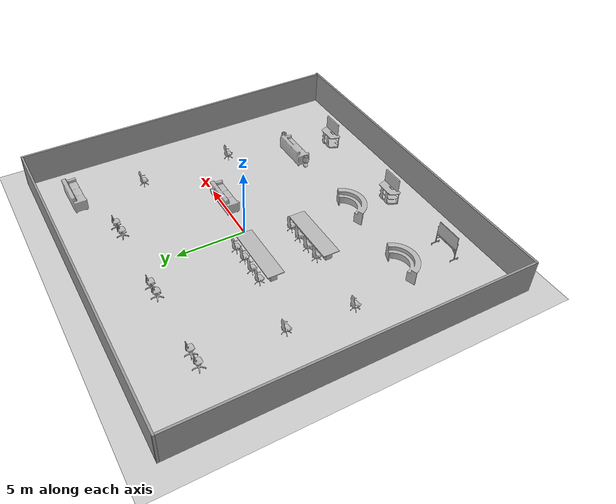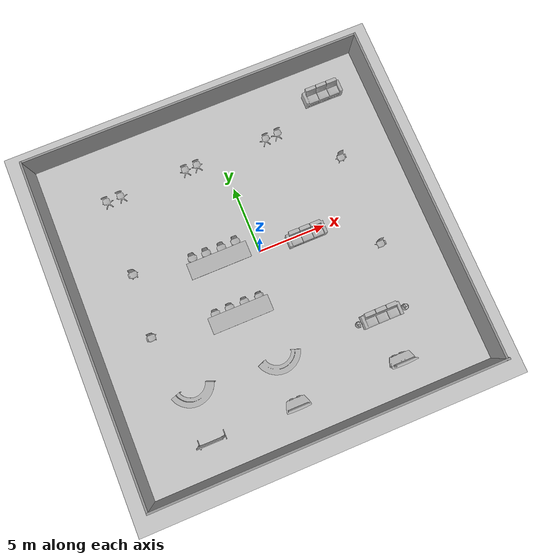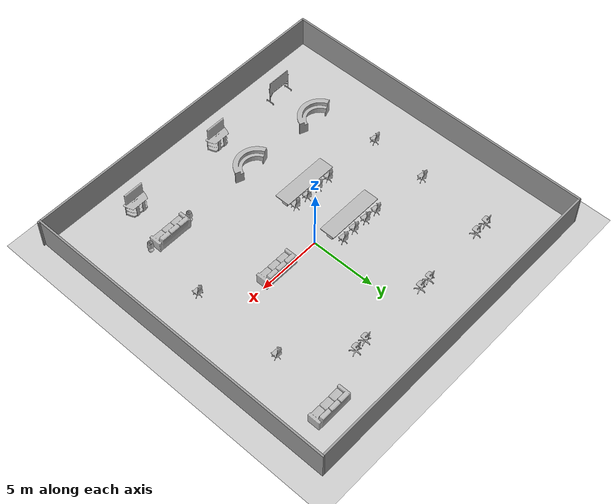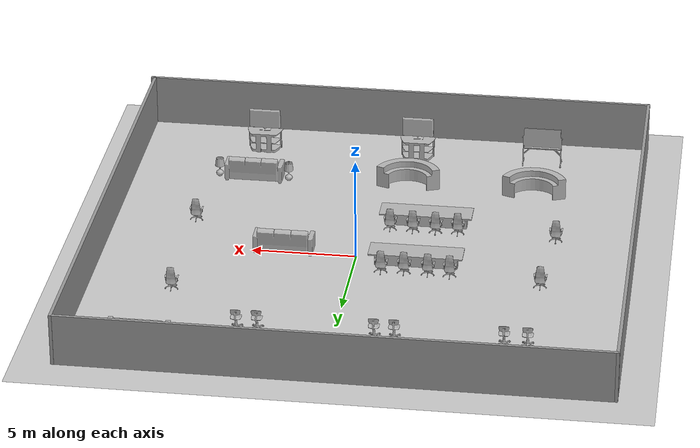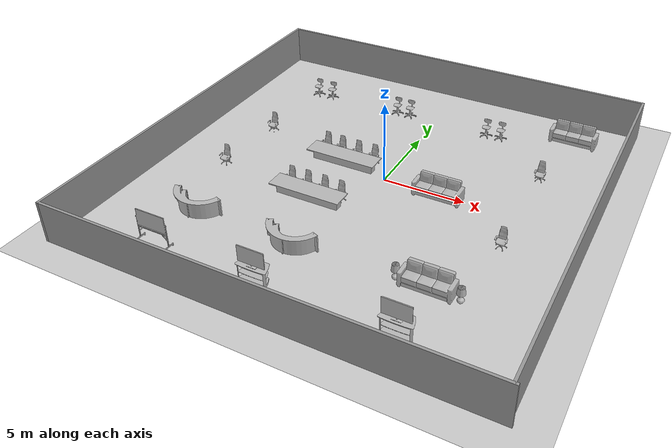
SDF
<sdf version="1.7">
 <world name="default">
  <light name="sun" type="directional">
   <pose>0 0 10 0 -0 0</pose>
   <diffuse>0.8 0.8 0.8 1</diffuse>
   <specular>0.2 0.2 0.2 1</specular>
   <attenuation>
    <range>1000</range>
    <constant>0.9</constant>
    <linear>0.01</linear>
    <quadratic>0.001</quadratic>
   </attenuation>
   <direction>-0.5 0.1 -0.9</direction>
   <spot><inner_angle>0</inner_angle><outer_angle>0</outer_angle><falloff>0</falloff></spot>
  </light>
  <model name="ground_plane">
   <static>1</static>
   <link name="link">
    <collision name="collision">
     <geometry><plane><normal>0 0 1</normal><size>100 100</size></plane></geometry>
     <surface>
      <contact><collide_bitmask>65535</collide_bitmask></contact>
      <friction><ode><mu>100</mu><mu2>50</mu2></ode></friction>
     </surface>
    </collision>
    <visual name="visual">
     <cast_shadows>0</cast_shadows>
     <geometry><plane><normal>0 0 1</normal><size>100 100</size></plane></geometry>
     <material>
      <script><uri>file://media/materials/scripts/gazebo.material</uri><name>Gazebo/Grey</name></script>
     </material>
    </visual>
   </link>
  </model>
  <gravity>0 0 -9.8</gravity>
  <magnetic_field>6e-06 2.3e-05 -4.2e-05</magnetic_field>
  <atmosphere type="adiabatic"/>
  <physics type="ode">
   <max_step_size>0.001</max_step_size>
   <real_time_factor>1</real_time_factor>
   <real_time_update_rate>1000</real_time_update_rate>
  </physics>
  <scene><ambient>0.4 0.4 0.4 1</ambient><background>0.7 0.7 0.7 1</background><shadows>1</shadows></scene>
  <spherical_coordinates>
   <surface_model>EARTH_WGS84</surface_model>
   <latitude_deg>0</latitude_deg>
   <longitude_deg>0</longitude_deg>
   <elevation>0</elevation>
   <heading_deg>0</heading_deg>
  </spherical_coordinates>
  <model name="office">
   <pose>-0.4259 -0.754501 0 0 -0 0</pose>
   <link name="Wall_0">
    <collision name="Wall_0_Collision">
     <geometry><box><size>25 0.15 2.5</size></box></geometry>
     <pose>0 0 1.25 0 -0 0</pose>
    </collision>
    <visual name="Wall_0_Visual">
     <pose>0 0 1.25 0 -0 0</pose>
     <geometry><box><size>25 0.15 2.5</size></box></geometry>
     <material>
      <script><uri>file://media/materials/scripts/gazebo.material</uri><name>Gazebo/Grey</name></script>
      <ambient>1 1 1 1</ambient>
     </material>
     <meta><layer>0</layer></meta>
    </visual>
    <pose>-12.675 -0.001862 0 0 -0 -1.57079</pose>
   </link>
   <link name="Wall_2">
    <collision name="Wall_2_Collision">
     <geometry><box><size>25.5 0.15 2.5</size></box></geometry>
     <pose>0 0 1.25 0 -0 0</pose>
    </collision>
    <visual name="Wall_2_Visual">
     <pose>0 0 1.25 0 -0 0</pose>
     <geometry><box><size>25.5 0.15 2.5</size></box></geometry>
     <material>
      <script><uri>file://media/materials/scripts/gazebo.material</uri><name>Gazebo/Grey</name></script>
      <ambient>1 1 1 1</ambient>
     </material>
     <meta><layer>0</layer></meta>
    </visual>
    <pose>0.000117 -12.4267 0 0 -0 0</pose>
   </link>
   <link name="Wall_4">
    <collision name="Wall_4_Collision">
     <geometry><box><size>25.25 0.15 2.5</size></box></geometry>
     <pose>0 0 1.25 0 -0 0</pose>
    </collision>
    <visual name="Wall_4_Visual">
     <pose>0 0 1.25 0 -0 0</pose>
     <geometry><box><size>25.25 0.15 2.5</size></box></geometry>
     <material>
      <script><uri>file://media/materials/scripts/gazebo.material</uri><name>Gazebo/Grey</name></script>
      <ambient>1 1 1 1</ambient>
     </material>
     <meta><layer>0</layer></meta>
    </visual>
    <pose>-0.125116 12.423 0 0 -0 0</pose>
   </link>
   <link name="Wall_6">
    <collision name="Wall_6_Collision">
     <geometry><box><size>25 0.15 2.5</size></box></geometry>
     <pose>0 0 1.25 0 -0 0</pose>
    </collision>
    <visual name="Wall_6_Visual">
     <pose>0 0 1.25 0 -0 0</pose>
     <geometry><box><size>25 0.15 2.5</size></box></geometry>
     <material>
      <script><uri>file://media/materials/scripts/gazebo.material</uri><name>Gazebo/Grey</name></script>
      <ambient>1 1 1 1</ambient>
     </material>
     <meta><layer>0</layer></meta>
    </visual>
    <pose>12.5541 0.00186 0 0 -0 -1.5708</pose>
   </link>
   <link name="Wall_7">
    <collision name="Wall_7_Collision">
     <geometry><box><size>0.15 0.15 2.5</size></box></geometry>
     <pose>0 0 1.25 0 -0 0</pose>
    </collision>
    <visual name="Wall_7_Visual">
     <pose>0 0 1.25 0 -0 0</pose>
     <geometry><box><size>0.15 0.15 2.5</size></box></geometry>
     <material>
      <script><uri>file://media/materials/scripts/gazebo.material</uri><name>Gazebo/Grey</name></script>
      <ambient>1 1 1 1</ambient>
     </material>
     <meta><layer>0</layer></meta>
    </visual>
    <pose>12.5541 -12.4231 0 0 -0 0</pose>
   </link>
   <static>1</static>
  </model>
  <model name="conference_table_large">
   <static>1</static>
   <link name="link">
    <collision name="collision">
     <pose>-0.000328 -0.000776 0.367474 0 -0 0</pose>
     <geometry><box><size>4.52032 1.21763 0.742359</size></box></geometry>
    </collision>
    <visual name="visual">
     <geometry>
      <mesh>
       <uri>model://conference_table_large/meshes/conference_table_large.obj</uri>
       <scale>0.01 0.01 0.01</scale>
      </mesh>
     </geometry>
    </visual>
   </link>
   <pose>-2.94339 0.417475 0 0 -0 0</pose>
  </model>
  <model name="desk_chair">
   <static>1</static>
   <link name="link">
    <collision name="collision">
     <pose>0.001581 0.000308 0.612847 0 -0 0</pose>
     <geometry><cylinder><radius>0.33</radius><length>1.23</length></cylinder></geometry>
    </collision>
    <visual name="visual">
     <geometry>
      <mesh><uri>model://desk_chair/meshes/desk_chair.obj</uri><scale>0.01 0.01 0.01</scale></mesh>
     </geometry>
    </visual>
   </link>
   <pose>-4.64277 1.33567 0 0 -0 0</pose>
  </model>
  <model name="desk_chair_0">
   <static>1</static>
   <link name="link">
    <collision name="collision">
     <pose>0.001581 0.000308 0.612847 0 -0 0</pose>
     <geometry><cylinder><radius>0.33</radius><length>1.23</length></cylinder></geometry>
    </collision>
    <visual name="visual">
     <geometry>
      <mesh><uri>model://desk_chair/meshes/desk_chair.obj</uri><scale>0.01 0.01 0.01</scale></mesh>
     </geometry>
    </visual>
   </link>
   <pose>-3.60424 1.3042 0 0 -0 0</pose>
  </model>
  <model name="desk_chair_1">
   <static>1</static>
   <link name="link">
    <collision name="collision">
     <pose>0.001581 0.000308 0.612847 0 -0 0</pose>
     <geometry><cylinder><radius>0.33</radius><length>1.23</length></cylinder></geometry>
    </collision>
    <visual name="visual">
     <geometry>
      <mesh><uri>model://desk_chair/meshes/desk_chair.obj</uri><scale>0.01 0.01 0.01</scale></mesh>
     </geometry>
    </visual>
   </link>
   <pose>-2.46683 1.27192 0 0 -0 0</pose>
  </model>
  <model name="desk_chair_2">
   <static>1</static>
   <link name="link">
    <collision name="collision">
     <pose>0.001581 0.000308 0.612847 0 -0 0</pose>
     <geometry><cylinder><radius>0.33</radius><length>1.23</length></cylinder></geometry>
    </collision>
    <visual name="visual">
     <geometry>
      <mesh><uri>model://desk_chair/meshes/desk_chair.obj</uri><scale>0.01 0.01 0.01</scale></mesh>
     </geometry>
    </visual>
   </link>
   <pose>-1.37834 1.31417 0 0 -0 0</pose>
  </model>
  <model name="reception_desk">
   <static>1</static>
   <link name="link">
    <collision name="collision">
     <geometry>
      <mesh><uri>model://reception_desk/meshes/reception_desk.obj</uri><scale>0.01 0.01 0.01</scale></mesh>
     </geometry>
    </collision>
    <visual name="visual">
     <geometry>
      <mesh><uri>model://reception_desk/meshes/reception_desk.obj</uri><scale>0.01 0.01 0.01</scale></mesh>
     </geometry>
    </visual>
   </link>
   <pose>-7.8708 -6.69199 0 0 -0 0</pose>
  </model>
  <model name="office_chair">
   <static>1</static>
   <link name="link">
    <collision name="collision">
     <pose>0.001581 0.000308 0.569888 0 -0 0</pose>
     <geometry><cylinder><radius>0.43</radius><length>1.14</length></cylinder></geometry>
    </collision>
    <visual name="visual">
     <geometry>
      <mesh><uri>model://office_chair/meshes/office_chair.dae</uri><scale>1.4 1.4 1.4</scale></mesh>
     </geometry>
    </visual>
   </link>
   <pose>-8.83628 7.43791 0 0 -0 0</pose>
  </model>
  <model name="office_chair_0">
   <static>1</static>
   <link name="link">
    <collision name="collision">
     <pose>0.001581 0.000308 0.569888 0 -0 0</pose>
     <geometry><cylinder><radius>0.43</radius><length>1.14</length></cylinder></geometry>
    </collision>
    <visual name="visual">
     <geometry>
      <mesh><uri>model://office_chair/meshes/office_chair.dae</uri><scale>1.4 1.4 1.4</scale></mesh>
     </geometry>
    </visual>
   </link>
   <pose>-7.76556 7.45732 0 0 -0 0</pose>
  </model>
  <model name="office_chair_1">
   <static>1</static>
   <link name="link">
    <collision name="collision">
     <pose>0.001581 0.000308 0.569888 0 -0 0</pose>
     <geometry><cylinder><radius>0.43</radius><length>1.14</length></cylinder></geometry>
    </collision>
    <visual name="visual">
     <geometry>
      <mesh><uri>model://office_chair/meshes/office_chair.dae</uri><scale>1.4 1.4 1.4</scale></mesh>
     </geometry>
    </visual>
   </link>
   <pose>-2.767 7.50876 0 0 -0 0</pose>
  </model>
  <model name="office_chair_2">
   <static>1</static>
   <link name="link">
    <collision name="collision">
     <pose>0.001581 0.000308 0.569888 0 -0 0</pose>
     <geometry><cylinder><radius>0.43</radius><length>1.14</length></cylinder></geometry>
    </collision>
    <visual name="visual">
     <geometry>
      <mesh><uri>model://office_chair/meshes/office_chair.dae</uri><scale>1.4 1.4 1.4</scale></mesh>
     </geometry>
    </visual>
   </link>
   <pose>-1.84855 7.5353 0 0 -0 0</pose>
  </model>
  <model name="office_chair_3">
   <static>1</static>
   <link name="link">
    <collision name="collision">
     <pose>0.001581 0.000308 0.569888 0 -0 0</pose>
     <geometry><cylinder><radius>0.43</radius><length>1.14</length></cylinder></geometry>
    </collision>
    <visual name="visual">
     <geometry>
      <mesh><uri>model://office_chair/meshes/office_chair.dae</uri><scale>1.4 1.4 1.4</scale></mesh>
     </geometry>
    </visual>
   </link>
   <pose>3.53253 7.4839 0 0 -0 0</pose>
  </model>
  <model name="office_chair_4">
   <static>1</static>
   <link name="link">
    <collision name="collision">
     <pose>0.001581 0.000308 0.569888 0 -0 0</pose>
     <geometry><cylinder><radius>0.43</radius><length>1.14</length></cylinder></geometry>
    </collision>
    <visual name="visual">
     <geometry>
      <mesh><uri>model://office_chair/meshes/office_chair.dae</uri><scale>1.4 1.4 1.4</scale></mesh>
     </geometry>
    </visual>
   </link>
   <pose>4.48399 7.53778 0 0 -0 0</pose>
  </model>
  <model name="office_couch">
   <static>1</static>
   <link name="link">
    <collision name="collision">
     <pose>0.000893 0.384169 0.704321 0 -0 0</pose>
     <geometry><box><size>2.91435 0.976328 1.41768</size></box></geometry>
    </collision>
    <visual name="visual">
     <geometry>
      <mesh><uri>model://office_couch/meshes/office_couch.dae</uri><scale>1.4 1.4 1.4</scale></mesh>
     </geometry>
    </visual>
   </link>
   <pose>6.07363 -7.84084 0 0 -0 0</pose>
  </model>
  <model name="office_lamp">
   <static>1</static>
   <link name="link">
    <collision name="collision">
     <geometry>
      <mesh><uri>model://office_lamp/meshes/office_lamp.dae</uri><scale>1.4 1.4 1.4</scale></mesh>
     </geometry>
    </collision>
    <visual name="visual">
     <geometry>
      <mesh><uri>model://office_lamp/meshes/office_lamp.dae</uri><scale>1.4 1.4 1.4</scale></mesh>
     </geometry>
    </visual>
   </link>
   <pose>4.36025 -7.46655 0 0 -0 0</pose>
  </model>
  <model name="office_lamp_0">
   <static>1</static>
   <link name="link">
    <collision name="collision">
     <geometry>
      <mesh><uri>model://office_lamp/meshes/office_lamp.dae</uri><scale>1.4 1.4 1.4</scale></mesh>
     </geometry>
    </collision>
    <visual name="visual">
     <geometry>
      <mesh><uri>model://office_lamp/meshes/office_lamp.dae</uri><scale>1.4 1.4 1.4</scale></mesh>
     </geometry>
    </visual>
   </link>
   <pose>7.83686 -7.54993 0 0 -0 0</pose>
  </model>
  <model name="whiteboard">
   <static>1</static>
   <link name="link">
    <collision name="collision">
     <pose>-0.010992 -0.000776 0.998212 0 -0 0</pose>
     <geometry><box><size>1.97372 0.69682 2.02507</size></box></geometry>
    </collision>
    <visual name="visual">
     <geometry>
      <mesh><uri>model://whiteboard/meshes/whiteboard.obj</uri><scale>0.01 0.01 0.01</scale></mesh>
     </geometry>
    </visual>
   </link>
   <pose>-7.9734 -10.8151 0 0 -0 0</pose>
  </model>
  <model name="reception_desk_0">
   <static>1</static>
   <link name="link">
    <collision name="collision">
     <geometry>
      <mesh><uri>model://reception_desk/meshes/reception_desk.obj</uri><scale>0.01 0.01 0.01</scale></mesh>
     </geometry>
    </collision>
    <visual name="visual">
     <geometry>
      <mesh><uri>model://reception_desk/meshes/reception_desk.obj</uri><scale>0.01 0.01 0.01</scale></mesh>
     </geometry>
    </visual>
   </link>
   <pose>-1.61613 -6.91112 0 0 -0 0</pose>
  </model>
  <model name="tv_stand_clone">
   <static>1</static>
   <link name="link">
    <collision name="collision">
     <pose>0.00123 -0.018095 1.05314 0 -0 0</pose>
     <geometry><box><size>1.80204 0.803547 2.11292</size></box></geometry>
    </collision>
    <visual name="visual">
     <geometry><mesh><uri>model://tv_stand/meshes/tv_stand.dae</uri><scale>1.4 1.4 1.4</scale></mesh></geometry>
    </visual>
   </link>
   <pose>-1.68938 -10.7238 0 0 -0 0</pose>
  </model>
  <model name="tv_stand_clone_0">
   <static>1</static>
   <link name="link">
    <collision name="collision">
     <pose>0.00123 -0.018095 1.05314 0 -0 0</pose>
     <geometry><box><size>1.80204 0.803547 2.11292</size></box></geometry>
    </collision>
    <visual name="visual">
     <geometry><mesh><uri>model://tv_stand/meshes/tv_stand.dae</uri><scale>1.4 1.4 1.4</scale></mesh></geometry>
    </visual>
   </link>
   <pose>6.08482 -10.6996 0 0 -0 0</pose>
  </model>
  <model name="office_couch_0">
   <static>1</static>
   <link name="link">
    <collision name="collision">
     <pose>0.000893 0.384169 0.704321 0 -0 0</pose>
     <geometry><box><size>2.91435 0.976328 1.41768</size></box></geometry>
    </collision>
    <visual name="visual">
     <geometry>
      <mesh><uri>model://office_couch/meshes/office_couch.dae</uri><scale>1.4 1.4 1.4</scale></mesh>
     </geometry>
    </visual>
   </link>
   <pose>8.72392 8.75845 0 0 -0 0</pose>
  </model>
  <model name="desk_chair_8">
   <static>1</static>
   <link name="link">
    <collision name="collision">
     <pose>0.001581 0.000308 0.612847 0 -0 0</pose>
     <geometry><cylinder><radius>0.33</radius><length>1.23</length></cylinder></geometry>
    </collision>
    <visual name="visual">
     <geometry>
      <mesh><uri>model://desk_chair/meshes/desk_chair.obj</uri><scale>0.01 0.01 0.01</scale></mesh>
     </geometry>
    </visual>
   </link>
   <pose>8.10036 4.15905 0 0 -0 0</pose>
  </model>
  <model name="desk_chair_9">
   <static>1</static>
   <link name="link">
    <collision name="collision">
     <pose>0.001581 0.000308 0.612847 0 -0 0</pose>
     <geometry><cylinder><radius>0.33</radius><length>1.23</length></cylinder></geometry>
    </collision>
    <visual name="visual">
     <geometry>
      <mesh><uri>model://desk_chair/meshes/desk_chair.obj</uri><scale>0.01 0.01 0.01</scale></mesh>
     </geometry>
    </visual>
   </link>
   <pose>8.15983 -2.77645 0 0 -0 0</pose>
  </model>
  <model name="desk_chair_12">
   <static>1</static>
   <link name="link">
    <collision name="collision">
     <pose>0.001581 0.000308 0.612847 0 -0 0</pose>
     <geometry><cylinder><radius>0.33</radius><length>1.23</length></cylinder></geometry>
    </collision>
    <visual name="visual">
     <geometry>
      <mesh><uri>model://desk_chair/meshes/desk_chair.obj</uri><scale>0.01 0.01 0.01</scale></mesh>
     </geometry>
    </visual>
   </link>
   <pose>-9.31371 -2.789 0 0 -0 0</pose>
  </model>
  <model name="desk_chair_12_clone">
   <static>1</static>
   <link name="link">
    <collision name="collision">
     <pose>0.001581 0.000308 0.612847 0 -0 0</pose>
     <geometry><cylinder><radius>0.33</radius><length>1.23</length></cylinder></geometry>
    </collision>
    <visual name="visual">
     <geometry>
      <mesh><uri>model://desk_chair/meshes/desk_chair.obj</uri><scale>0.01 0.01 0.01</scale></mesh>
     </geometry>
    </visual>
   </link>
   <pose>-8.94214 1.84096 0 0 -0 0</pose>
  </model>
  <model name="conference_table_large_clone">
   <static>1</static>
   <link name="link">
    <collision name="collision">
     <pose>-0.000328 -0.000776 0.367474 0 -0 0</pose>
     <geometry><box><size>4.52032 1.21763 0.742359</size></box></geometry>
    </collision>
    <visual name="visual">
     <geometry>
      <mesh>
       <uri>model://conference_table_large/meshes/conference_table_large.obj</uri>
       <scale>0.01 0.01 0.01</scale>
      </mesh>
     </geometry>
    </visual>
   </link>
   <pose>-2.96137 -3.68703 0 0 -0 0</pose>
  </model>
  <model name="desk_chair_2_clone">
   <static>1</static>
   <link name="link">
    <collision name="collision">
     <pose>0.001581 0.000308 0.612847 0 -0 0</pose>
     <geometry><cylinder><radius>0.33</radius><length>1.23</length></cylinder></geometry>
    </collision>
    <visual name="visual">
     <geometry>
      <mesh><uri>model://desk_chair/meshes/desk_chair.obj</uri><scale>0.01 0.01 0.01</scale></mesh>
     </geometry>
    </visual>
   </link>
   <pose>-1.29179 -2.95548 0 0 -0 0</pose>
  </model>
  <model name="desk_chair_2_clone_0">
   <static>1</static>
   <link name="link">
    <collision name="collision">
     <pose>0.001581 0.000308 0.612847 0 -0 0</pose>
     <geometry><cylinder><radius>0.33</radius><length>1.23</length></cylinder></geometry>
    </collision>
    <visual name="visual">
     <geometry>
      <mesh><uri>model://desk_chair/meshes/desk_chair.obj</uri><scale>0.01 0.01 0.01</scale></mesh>
     </geometry>
    </visual>
   </link>
   <pose>-2.39577 -2.9213 0 0 -0 0</pose>
  </model>
  <model name="desk_chair_2_clone_1">
   <static>1</static>
   <link name="link">
    <collision name="collision">
     <pose>0.001581 0.000308 0.612847 0 -0 0</pose>
     <geometry><cylinder><radius>0.33</radius><length>1.23</length></cylinder></geometry>
    </collision>
    <visual name="visual">
     <geometry>
      <mesh><uri>model://desk_chair/meshes/desk_chair.obj</uri><scale>0.01 0.01 0.01</scale></mesh>
     </geometry>
    </visual>
   </link>
   <pose>-3.50051 -2.91864 0 0 -0 0</pose>
  </model>
  <model name="desk_chair_2_clone_2">
   <static>1</static>
   <link name="link">
    <collision name="collision">
     <pose>0.001581 0.000308 0.612847 0 -0 0</pose>
     <geometry><cylinder><radius>0.33</radius><length>1.23</length></cylinder></geometry>
    </collision>
    <visual name="visual">
     <geometry>
      <mesh><uri>model://desk_chair/meshes/desk_chair.obj</uri><scale>0.01 0.01 0.01</scale></mesh>
     </geometry>
    </visual>
   </link>
   <pose>-4.57331 -2.94776 0 0 -0 0</pose>
  </model>
  <model name="office_couch_clone">
   <static>1</static>
   <link name="link">
    <collision name="collision">
     <pose>0.000893 0.384169 0.704321 0 -0 0</pose>
     <geometry><box><size>2.91435 0.976328 1.41768</size></box></geometry>
    </collision>
    <visual name="visual">
     <geometry>
      <mesh><uri>model://office_couch/meshes/office_couch.dae</uri><scale>1.4 1.4 1.4</scale></mesh>
     </geometry>
    </visual>
   </link>
   <pose>3.47925 -0.569306 0 0 -0 0</pose>
  </model>
 </world>
</sdf>
